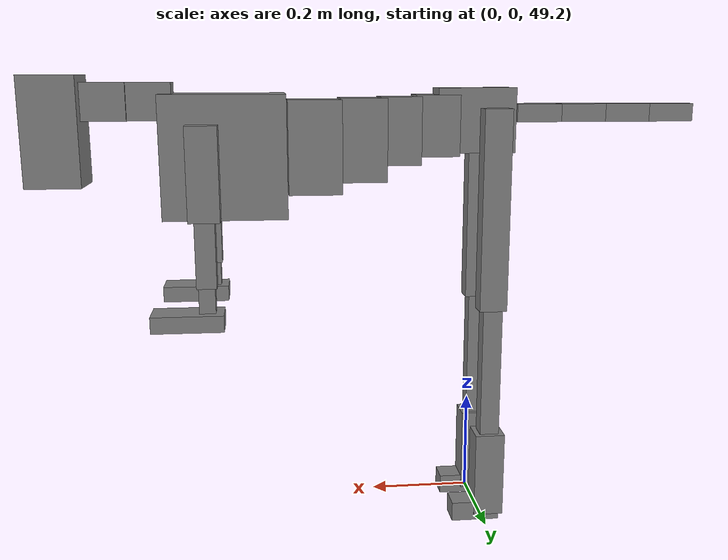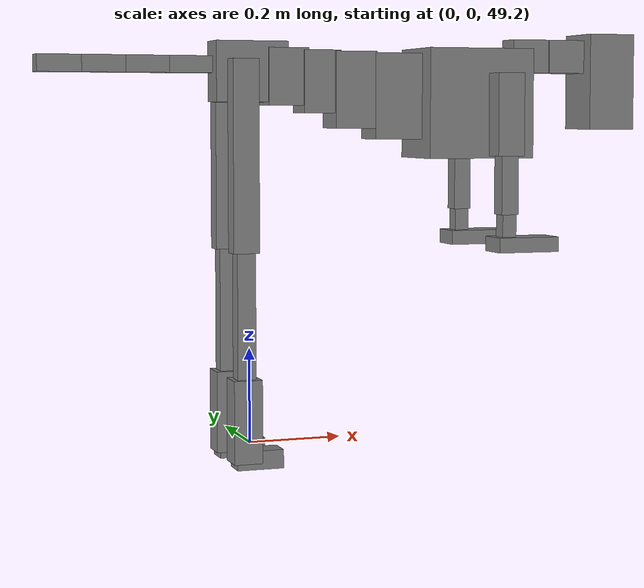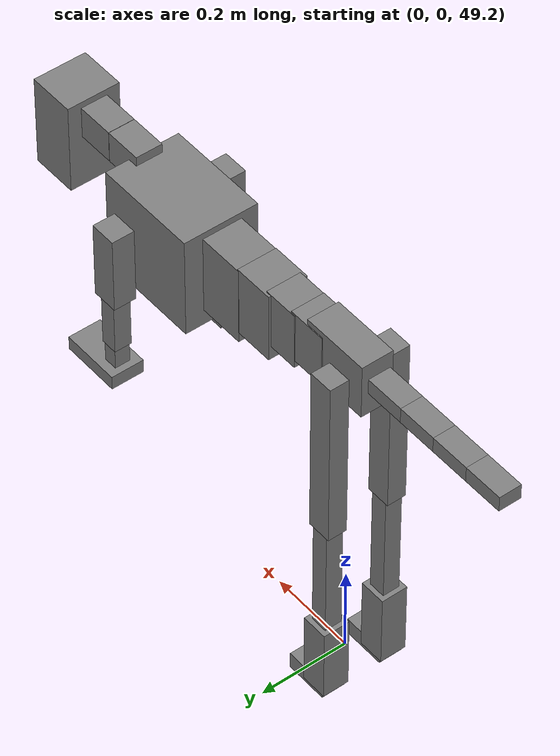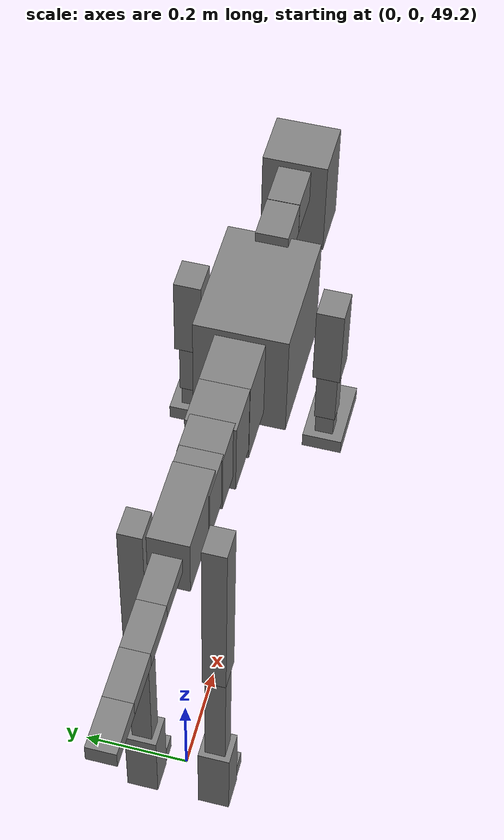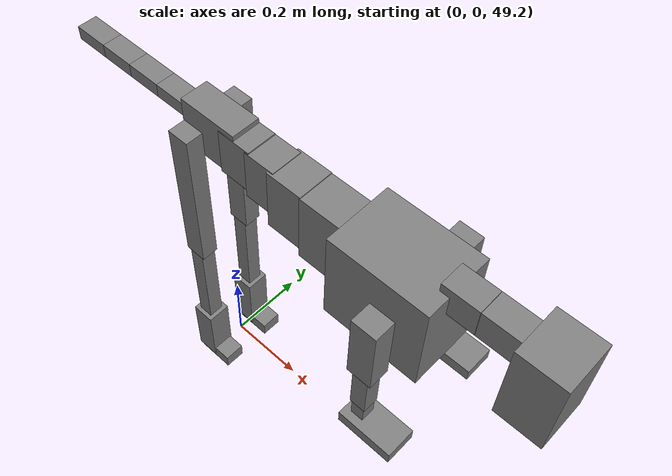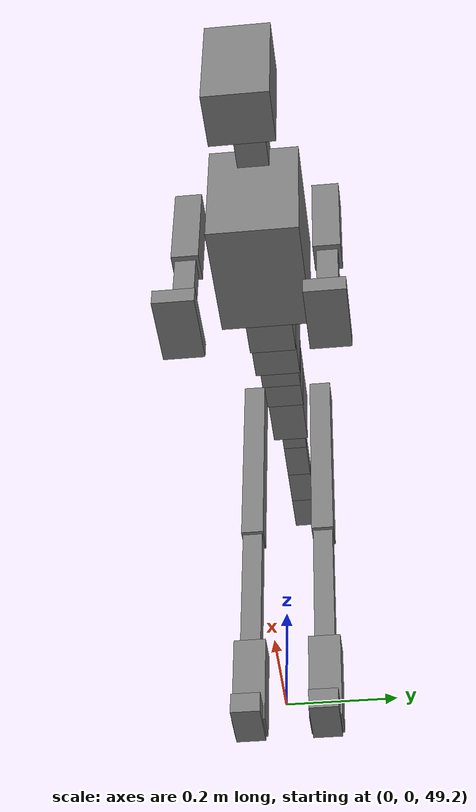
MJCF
<mujoco model="dog">

    <default>
        <joint armature="0.02" stiffness="1" damping="0.2" limited="true"/>
        <geom condim="3" friction="1 0.05 0.05" margin="0.01"/>
        <motor ctrllimited="true" ctrlrange="-1.0 1.0" forcelimited="true" gear="50"/>
    </default>

    <compiler inertiafromgeom="true" angle="radian"/>

    <option timestep="0.016" iterations="50" tolerance="1e-10" solver="Newton" jacobian="dense" cone="pyramidal"/>

    <size nconmax="20000" njmax="60000" nstack="5000000"/>
    <visual>
        <map force="0.1" zfar="30"/>
        <rgba haze="0.15 0.25 0.35 1"/>
        <quality shadowsize="2048"/>
        <global offwidth="800" offheight="800"/>
    </visual>

    <asset>
        <texture type="skybox" builtin="gradient" rgb1="0.3 0.5 0.7" rgb2="0 0 0" width="512" height="512"/>
        <texture name="texplane" type="2d" builtin="checker" rgb1=".2 .3 .4" rgb2=".1 0.15 0.2" width="512" height="512"
                 mark="cross" markrgb=".8 .8 .8"/>
        <texture name="texgeom" type="cube" builtin="flat" mark="cross" width="127" height="1278" rgb1="0.8 0.6 0.4"
                 rgb2="0.8 0.6 0.4" markrgb="1 1 1" random="0.01"/>

        <material name="matplane" reflectance="0.3" texture="texplane" texrepeat="1 1" texuniform="true"/>
        <material name="matgeom" texture="texgeom" texuniform="true" rgba="0.8 0.6 .4 1"/>
    </asset>

    <worldbody>
        <geom name="floor" pos="0 0 0" size="0 0 .25" type="plane" material="matplane" condim="3"/>

        <light directional="false" diffuse=".2 .2 .2" specular="0 0 0" pos="0 0 5" dir="0 0 -1" castshadow="false"/>
        <light mode="targetbodycom" target="torso" directional="false" diffuse=".8 .8 .8" specular="0.3 0.3 0.3"
               pos="0 0 4.0" dir="0 0 -1"/>

        <body name="root" pos="0 0 50">
            <freejoint name="root_1"/>
            <geom type="box" pos="0 0 -0.02" size="0.0774  0.0358  0.063" density="2030"/>

            <body name="spine1" pos="0.054 0 0">
                <joint name="spine1_y" axis="0 1 0" range="0 0.7" limited="true"/>
                <geom type="box" pos="0.02375 0 -0.03" size="0.04375  0.0375  0.05985" density="2030"/>

                <body name="spine2" pos="0.0612 0 0">
                    <joint name="spine2_y" axis="0 1 0" range="-0.15 0.15" limited="true"/>
                    <geom type="box" pos="0.03555  0  -0.04" size="0.04055  0.039  0.06615" density="2030"/>

                    <body name="spine3" pos="0.0730 0 0">
                        <joint name="spine3_y" axis="0 1 0" range="-0.15 0.15" limited="true"/>
                        <geom type="box" pos="0.03555  0  -0.057" size="0.04555  0.0445  0.081" density="2030"/>

                        <body name="spine4" pos="0.0780 0 0">
                            <joint name="spine4_y" axis="0 1 0" range="-0.15 0.15" limited="true"/>
                            <geom type="box" pos="0.05265  0  -0.07" size="0.05265  0.045  0.09135" density="2030"/>

                            <body name="torso" pos="0.1082 0 0">
                                <joint name="torso_y" axis="0 1 0" range="-0.15 0.15" limited="true"/>
                                <geom type="box" pos="0.11925  0  -0.085" size="0.11925  0.085  0.11745"
                                      density="2030"/>

                                <body name="neck1" pos="0.2160  0   0.0180">
                                    <joint name="neck1_y" axis="0 1 0" range="-1.2  -1" limited="true"/>
                                    <geom type="box" pos="0.0423  0  0" size="0.0423  0.03  0.036" density="2325"/>

                                    <body name="neck2" pos="0.0853  0  0">
                                        <joint name="neck2_y" axis="0 1 0" range="0.1  0" limited="true"/>
                                        <geom type="box" pos="0.0423  0  0" size="0.0423  0.03  0.036" density="2325"/>

                                        <body name="head" pos="0.0853  0  0">
                                            <joint name="head_y" axis="0 1 0" range="-0.3  -0.2" limited="true"/>
                                            <geom type="box" pos="0.0531  0  -0.055" size="0.0531  0.06  0.1044"
                                                  density="4030"/>

                                        </body>
                                    </body>
                                </body>

                                <body name="front_shoulder" pos="0.156  0   -0.0480">
                                    <joint name="front_shoulder_y" axis="0 1 0" range="-1 1.5" limited="true"/>
                                    <geom type="box" pos="0 0.13 -0.0610" size="0.0296  0.0253  0.0877" density="1158"/>
                                    <geom type="box" pos="0 -0.13 -0.0610" size="0.0296  0.0253  0.0877"
                                          density="1158"/>

                                    <body name="front_elbow" pos="0  0  -0.1220">
                                        <joint name="front_elbow_y" axis="0 1 0" range="-2 0" limited="true"/>
                                        <geom type="box" pos="0 0.13 -0.0753" size="0.0190  0.0194  0.0753"
                                              density="1081"/>
                                        <geom type="box" pos="0 -0.13 -0.0753" size="0.0190  0.0194  0.0753"
                                              density="1081"/>

                                        <body name="front_wrist" pos="0  0  -0.1506">
                                            <joint name="front_wrist_y" axis="0 1 0" range="-0.2 0" limited="true"/>
                                            <geom type="box" pos="0 0.13 -0.0313" size="0.0155  0.0172  0.0445"
                                                  density="1664"/>
                                            <geom type="box" pos="0 -0.13 -0.0313" size="0.0155  0.0172  0.0445"
                                                  density="1664"/>

                                            <body name="front_finger_end" pos="0  0  -0.0626">
                                                <joint name="front_finger_y" axis="0 1 0" range="-0.4 1"
                                                       limited="true"/>
                                                <geom type="box" pos="0.0372  0.13  -0.0008"
                                                      size="0.0681  0.0372  0.0158" density="1515"/>
                                                <geom type="box" pos="0.0372  -0.13  -0.0008"
                                                      size="0.0681  0.0372  0.0158" density="1515"/>

                                            </body>

                                        </body>
                                    </body>
                                </body>

                            </body>
                        </body>
                    </body>
                </body>
            </body>

            <body name="back_hip" pos="-0.03 0 -0.018">
                <joint name="back_hip_y" axis="0 1 0" range="-1.5 0.3" limited="true"/>
                <geom type="box" pos="0 0.07 -0.1762" size="0.0275  0.0215  0.1990" density="1154"/>
                <geom type="box" pos="0 -0.07 -0.1762" size="0.0275  0.0215  0.1990" density="1154"/>

                <body name="back_knee" pos="0  0  -0.3525">
                    <joint name="back_knee_y" axis="0 1 0" range="0 2.8" limited="true"/>
                    <geom type="box" pos="0 0.07 -0.1472" size="0.0195  0.0192  0.1628" density="1227"/>
                    <geom type="box" pos="0 -0.07 -0.1472" size="0.0195  0.0192  0.1628" density="1227"/>

                    <body name="back_ankle" pos="0  0  -0.2945">
                        <joint name="back_ankle_y" axis="0 1 0" range="-2.2 0" limited="true"/>
                        <geom type="box" pos="0 0.07 -0.0754" size="0.0300  0.0300  0.0867" density="1284"/>
                        <geom type="box" pos="0 -0.07 -0.0754" size="0.0300  0.0300  0.0867" density="1284"/>

                        <body name="back_toe_end" pos="0  0  -0.1509">
                            <joint name="back_toe_y" axis="0 1 0" range="-0.4 1" limited="true"/>
                            <geom type="box" pos="0.0267  0.07  -0.0045" size="0.0490  0.0267  0.0195" density="1515"/>
                            <geom type="box" pos="0.0267  -0.07  -0.0045" size="0.0490  0.0267  0.0195" density="1515"/>

                        </body>
                    </body>
                </body>
            </body>

            <body name="tail1" pos="-0.074 0 -0.006">
                <joint name="tail1_y" axis="0 1 0" range="-0.2 0.2" limited="true"/>
                <geom type="box" pos="-0.0536  0  0" size="0.045  0.025  0.0175" density="1587"/>

                <body name="tail2" pos="-0.09 0 0">
                    <joint name="tail2_y" axis="0 1 0" range="-0.2 0.2" limited="true"/>
                    <geom type="box" pos="-0.0536  0  0" size="0.045  0.025  0.0175" density="1587"/>

                    <body name="tail3" pos="-0.09 0 0">
                        <joint name="tail3_y" axis="0 1 0" range="-0.2 0.2" limited="true"/>
                        <geom type="box" pos="-0.0536  0  0" size="0.045  0.025  0.0175" density="1587"/>

                        <body name="tail4" pos="-0.09 0 0">
                            <joint name="tail4_y" axis="0 1 0" range="-0.2 0.2" limited="true"/>
                            <geom type="box" pos="-0.0536  0  0" size="0.045  0.025  0.0175" density="1587"/>

                        </body>
                    </body>
                </body>
            </body>
        </body>
    </worldbody>

    <actuator>
        <motor joint="spine1_y" forcerange="-150 150     "/>
        <motor joint="spine2_y" forcerange="-150 150     "/>
        <motor joint="spine3_y" forcerange="-150 150     "/>
        <motor joint="spine4_y" forcerange="-150 150     "/>
        <motor joint="torso_y" forcerange="-150 150     "/>
        <motor joint="neck1_y" forcerange="-100 100       "/>
        <motor joint="neck2_y" forcerange="-100 100       "/>
        <motor joint="head_y" forcerange="-150 150       "/>
        <motor joint="front_shoulder_y" forcerange="-156.70 111.79"/>
        <motor joint="front_elbow_y" forcerange="-109.52 131.76"/>
        <motor joint="front_wrist_y" forcerange="-59.27 78.29"/>
        <motor joint="front_finger_y" forcerange="-86.93 71.22"/>
        <motor joint="back_hip_y" forcerange="-251.70 235.46"/>
        <motor joint="back_knee_y" forcerange="-214.90 264.29"/>
        <motor joint="back_angle_y" forcerange="-215.19 165.03"/>
        <motor joint="back_toe_y" forcerange="-61.46 72.45"/>
        <motor joint="tail1_y" forcerange="-50 50     "/>
        <motor joint="tail2_y" forcerange="-50 50     "/>
        <motor joint="tail3_y" forcerange="-50 50     "/>
        <motor joint="tail4_y" forcerange="-50 50     "/>
    </actuator>
</mujoco>
